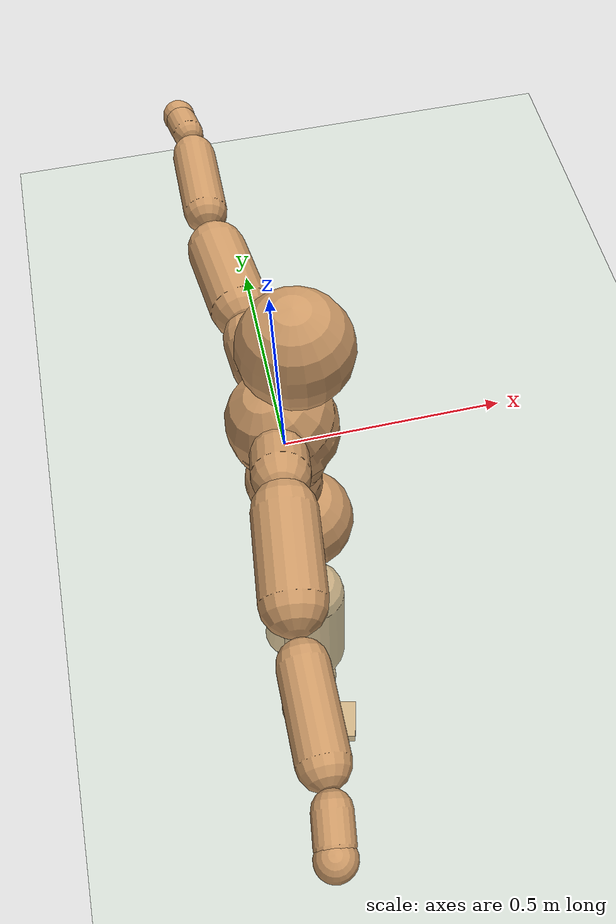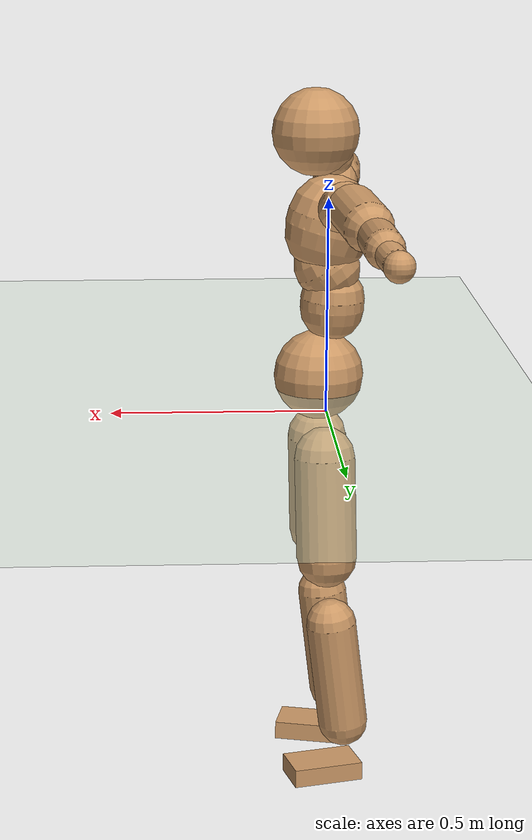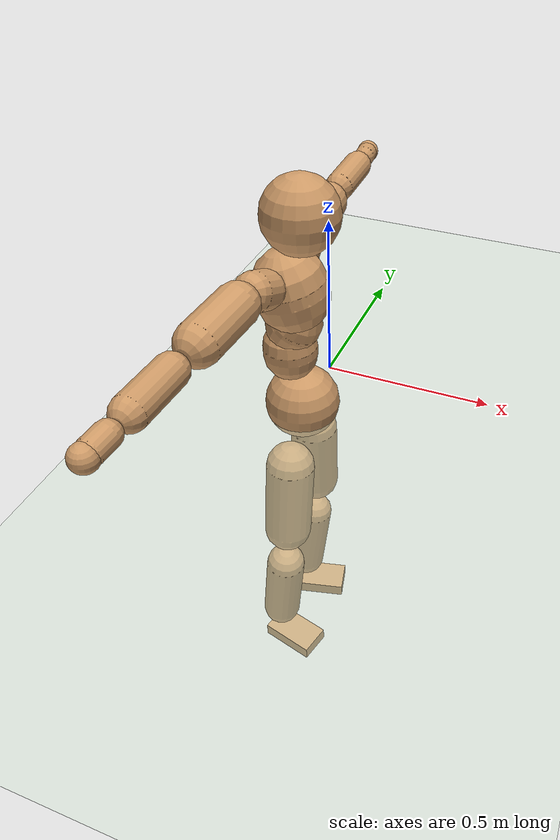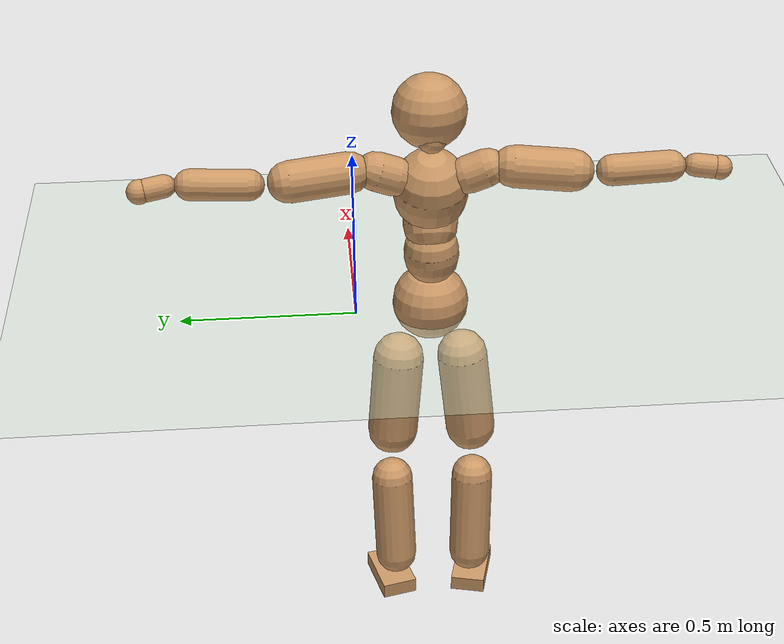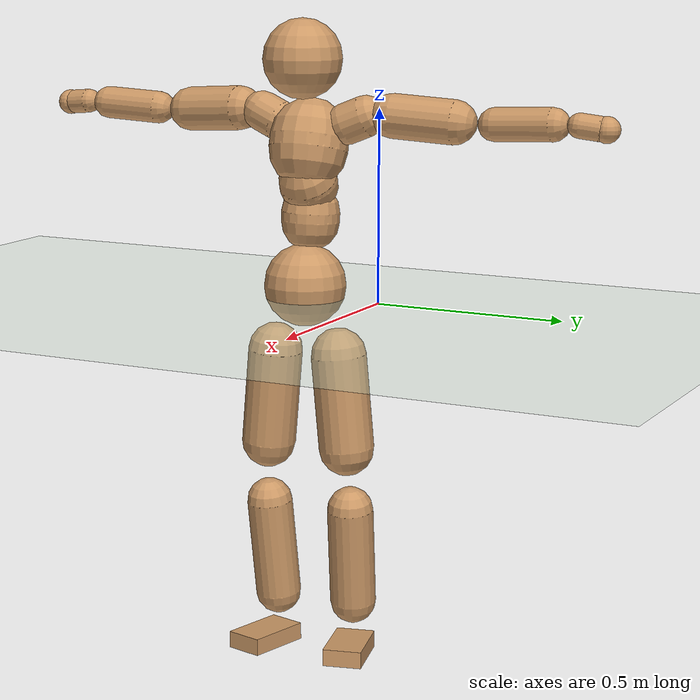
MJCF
<mujoco model="humanoid">
  <compiler coordinate="local" angle="radian"/>
  <default>
    <joint damping="0.0" armature="0.01" stiffness="0.0" limited="true"/>
    <geom conaffinity="1" condim="3" contype="7" margin="0.001" rgba="0.8 0.6 .4 1"/>
  </default>
  <asset>
    <texture type="skybox" builtin="gradient" rgb1=".4 .5 .6" rgb2="0 0 0" width="100" height="100"/>
    <texture builtin="flat" height="1278" mark="cross" markrgb="1 1 1" name="texgeom" random="0.01" rgb1="0.8 0.6 0.4" rgb2="0.8 0.6 0.4" type="cube" width="127"/>
    <texture builtin="checker" height="100" name="texplane" rgb1="0 0 0" rgb2="0.8 0.8 0.8" type="2d" width="100"/>
    <material name="MatPlane" reflectance="0.5" shininess="1" specular="1" texrepeat="60 60" texture="texplane"/>
    <material name="geom" texture="texgeom" texuniform="true"/>
  </asset>
  <worldbody>
    <light cutoff="100" diffuse="1 1 1" dir="-0 0 -1.3" directional="true" exponent="1" pos="0 0 1.3" specular=".1 .1 .1"/>
    <geom conaffinity="1" condim="3" name="floor" pos="0 0 0" rgba="0.8 0.9 0.8 1" size="100 100 .2" type="plane" material="MatPlane"/>
    <body name="Pelvis" pos="-0 -0.2123 0.032">
      <freejoint name="Pelvis"/>
      <geom type="sphere" contype="1" conaffinity="1" density="500" size="0.1082" pos="0.0000 0.0000 0.0000" name="Pelvis"/>
      <body name="L_Hip" pos="-0.0074 0.0864 -0.0984">
        <joint name="L_Hip_x" type="hinge" pos="0 0 0" axis="1 0 0" stiffness="800" damping="80" armature="0.02" range="-180.0000 180.0000"/>
        <joint name="L_Hip_y" type="hinge" pos="0 0 0" axis="0 1 0" stiffness="800" damping="80" armature="0.02" range="-180.0000 180.0000"/>
        <joint name="L_Hip_z" type="hinge" pos="0 0 0" axis="0 0 1" stiffness="800" damping="80" armature="0.02" range="-180.0000 180.0000"/>
        <geom type="capsule" contype="1" conaffinity="1" density="500" fromto="-0.0021 0.0069 -0.0831 -0.0084 0.0274 -0.3323" size="0.0731" name="L_Hip"/>
        <body name="L_Knee" pos="-0.0105 0.0343 -0.4154">
          <joint name="L_Knee_x" type="hinge" pos="0 0 0" axis="1 0 0" stiffness="800" damping="80" armature="0.02" range="-180.0000 180.0000"/>
          <joint name="L_Knee_y" type="hinge" pos="0 0 0" axis="0 1 0" stiffness="800" damping="80" armature="0.02" range="-180.0000 180.0000"/>
          <joint name="L_Knee_z" type="hinge" pos="0 0 0" axis="0 0 1" stiffness="800" damping="80" armature="0.02" range="-180.0000 180.0000"/>
          <geom type="capsule" contype="1" conaffinity="1" density="500" fromto="-0.0110 -0.0023 -0.0880 -0.0442 -0.0093 -0.3521" size="0.0612" name="L_Knee"/>
          <body name="L_Ankle" pos="-0.0552 -0.0116 -0.4401">
            <joint name="L_Ankle_x" type="hinge" pos="0 0 0" axis="1 0 0" stiffness="800" damping="80" armature="0.02" range="-180.0000 180.0000"/>
            <joint name="L_Ankle_y" type="hinge" pos="0 0 0" axis="0 1 0" stiffness="800" damping="80" armature="0.02" range="-180.0000 180.0000"/>
            <joint name="L_Ankle_z" type="hinge" pos="0 0 0" axis="0 0 1" stiffness="800" damping="80" armature="0.02" range="-180.0000 180.0000"/>
            <geom type="box" contype="1" conaffinity="1" density="500" pos="0.0611 0.0150 -0.0310" size="0.0867 0.0517 0.0226" quat="0.9928 0.0000 0.0000 0.1201" name="L_Ankle"/>
            <body name="L_Toe" pos="0.1222 0.03 -0.0619">
              <joint name="L_Toe_x" type="hinge" pos="0 0 0" axis="1 0 0" stiffness="500" damping="50" armature="0.02" range="-180.0000 180.0000"/>
              <joint name="L_Toe_y" type="hinge" pos="0 0 0" axis="0 1 0" stiffness="500" damping="50" armature="0.02" range="-180.0000 180.0000"/>
              <joint name="L_Toe_z" type="hinge" pos="0 0 0" axis="0 0 1" stiffness="500" damping="50" armature="0.02" range="-180.0000 180.0000"/>
              <geom type="box" contype="1" conaffinity="1" density="500" pos="0.0000 0.0000 0.0319" size="0.001 0.0025 0.0012" quat="0.9921 0.0000 0.0000 0.1258" name="L_Toe"/>
            </body>
          </body>
        </body>
      </body>
      <body name="R_Hip" pos="-0.0033 -0.0838 -0.0977">
        <joint name="R_Hip_x" type="hinge" pos="0 0 0" axis="1 0 0" stiffness="800" damping="80" armature="0.02" range="-180.0000 180.0000"/>
        <joint name="R_Hip_y" type="hinge" pos="0 0 0" axis="0 1 0" stiffness="800" damping="80" armature="0.02" range="-180.0000 180.0000"/>
        <joint name="R_Hip_z" type="hinge" pos="0 0 0" axis="0 0 1" stiffness="800" damping="80" armature="0.02" range="-180.0000 180.0000"/>
        <geom type="capsule" contype="1" conaffinity="1" density="500" fromto="-0.0027 -0.0086 -0.0843 -0.0107 -0.0344 -0.3374" size="0.0722" name="R_Hip"/>
        <body name="R_Knee" pos="-0.0134 -0.043 -0.4217">
          <joint name="R_Knee_x" type="hinge" pos="0 0 0" axis="1 0 0" stiffness="800" damping="80" armature="0.02" range="-180.0000 180.0000"/>
          <joint name="R_Knee_y" type="hinge" pos="0 0 0" axis="0 1 0" stiffness="800" damping="80" armature="0.02" range="-180.0000 180.0000"/>
          <joint name="R_Knee_z" type="hinge" pos="0 0 0" axis="0 0 1" stiffness="800" damping="80" armature="0.02" range="-180.0000 180.0000"/>
          <geom type="capsule" contype="1" conaffinity="1" density="500" fromto="-0.0106 0.0029 -0.0883 -0.0424 0.0116 -0.3531" size="0.0612" name="R_Knee"/>
          <body name="R_Ankle" pos="-0.053 0.0145 -0.4414">
            <joint name="R_Ankle_x" type="hinge" pos="0 0 0" axis="1 0 0" stiffness="800" damping="80" armature="0.02" range="-180.0000 180.0000"/>
            <joint name="R_Ankle_y" type="hinge" pos="0 0 0" axis="0 1 0" stiffness="800" damping="80" armature="0.02" range="-180.0000 180.0000"/>
            <joint name="R_Ankle_z" type="hinge" pos="0 0 0" axis="0 0 1" stiffness="800" damping="80" armature="0.02" range="-180.0000 180.0000"/>
            <geom type="box" contype="1" conaffinity="1" density="500" pos="0.0634 -0.0157 -0.0275" size="0.0884 0.0507 0.0226" quat="0.9927 0.0000 0.0000 -0.1210" name="R_Ankle"/>
            <body name="R_Toe" pos="0.1269 -0.0314 -0.055">
              <joint name="R_Toe_x" type="hinge" pos="0 0 0" axis="1 0 0" stiffness="500" damping="50" armature="0.02" range="-180.0000 180.0000"/>
              <joint name="R_Toe_y" type="hinge" pos="0 0 0" axis="0 1 0" stiffness="500" damping="50" armature="0.02" range="-180.0000 180.0000"/>
              <joint name="R_Toe_z" type="hinge" pos="0 0 0" axis="0 0 1" stiffness="500" damping="50" armature="0.02" range="-180.0000 180.0000"/>
              <geom type="box" contype="1" conaffinity="1" density="500" pos="0.0000 0.0000 0.0297" size="0.0009 0.0024 0.0012" quat="0.9937 0.0000 0.0000 -0.1119" name="R_Toe"/>
            </body>
          </body>
        </body>
      </body>
      <body name="Torso" pos="-0.0284 -0.0021 0.1129">
        <joint name="Torso_x" type="hinge" pos="0 0 0" axis="1 0 0" stiffness="1000" damping="100" armature="0.02" range="-180.0000 180.0000"/>
        <joint name="Torso_y" type="hinge" pos="0 0 0" axis="0 1 0" stiffness="1000" damping="100" armature="0.02" range="-180.0000 180.0000"/>
        <joint name="Torso_z" type="hinge" pos="0 0 0" axis="0 0 1" stiffness="1000" damping="100" armature="0.02" range="-180.0000 180.0000"/>
        <geom type="capsule" contype="1" conaffinity="1" density="500" fromto="-0.0030 0.0020 0.0756 -0.0020 0.0013 0.0504" size="0.077" name="Torso"/>
        <body name="Spine" pos="-0.005 0.0033 0.126">
          <joint name="Spine_x" type="hinge" pos="0 0 0" axis="1 0 0" stiffness="1000" damping="100" armature="0.02" range="-180.0000 180.0000"/>
          <joint name="Spine_y" type="hinge" pos="0 0 0" axis="0 1 0" stiffness="1000" damping="100" armature="0.02" range="-180.0000 180.0000"/>
          <joint name="Spine_z" type="hinge" pos="0 0 0" axis="0 0 1" stiffness="1000" damping="100" armature="0.02" range="-180.0000 180.0000"/>
          <geom type="capsule" contype="1" conaffinity="1" density="500" fromto="0.0199 0.0002 0.0306 0.0133 0.0002 0.0204" size="0.0766" name="Spine"/>
          <body name="Chest" pos="0.0332 0.0004 0.051">
            <joint name="Chest_x" type="hinge" pos="0 0 0" axis="1 0 0" stiffness="1000" damping="100" armature="0.02" range="-180.0000 180.0000"/>
            <joint name="Chest_y" type="hinge" pos="0 0 0" axis="0 1 0" stiffness="1000" damping="100" armature="0.02" range="-180.0000 180.0000"/>
            <joint name="Chest_z" type="hinge" pos="0 0 0" axis="0 0 1" stiffness="1000" damping="100" armature="0.02" range="-180.0000 180.0000"/>
            <geom type="capsule" contype="1" conaffinity="1" density="500" fromto="-0.0243 -0.0011 0.0940 -0.0162 -0.0007 0.0627" size="0.1028" name="Chest"/>
            <body name="Neck" pos="-0.0437 -0.0037 0.2248">
              <joint name="Neck_x" type="hinge" pos="0 0 0" axis="1 0 0" stiffness="500" damping="50" armature="0.02" range="-180.0000 180.0000"/>
              <joint name="Neck_y" type="hinge" pos="0 0 0" axis="0 1 0" stiffness="500" damping="50" armature="0.02" range="-180.0000 180.0000"/>
              <joint name="Neck_z" type="hinge" pos="0 0 0" axis="0 0 1" stiffness="500" damping="50" armature="0.02" range="-180.0000 180.0000"/>
              <geom type="capsule" contype="1" conaffinity="1" density="500" fromto="0.0115 0.0006 0.0144 0.0459 0.0023 0.0578" size="0.0434" name="Neck"/>
              <body name="Head" pos="0.0573 0.0028 0.0722">
                <joint name="Head_x" type="hinge" pos="0 0 0" axis="1 0 0" stiffness="500" damping="50" armature="0.02" range="-180.0000 180.0000"/>
                <joint name="Head_y" type="hinge" pos="0 0 0" axis="0 1 0" stiffness="500" damping="50" armature="0.02" range="-180.0000 180.0000"/>
                <joint name="Head_z" type="hinge" pos="0 0 0" axis="0 0 1" stiffness="500" damping="50" armature="0.02" range="-180.0000 180.0000"/>
                <geom type="sphere" contype="1" conaffinity="1" density="500" size="0.1035" pos="0.0000 0.0000 0.0000" name="Head"/>
              </body>
            </body>
            <body name="L_Thorax" pos="-0.036 0.0798 0.123">
              <joint name="L_Thorax_x" type="hinge" pos="0 0 0" axis="1 0 0" stiffness="500" damping="50" armature="0.02" range="-180.0000 180.0000"/>
              <joint name="L_Thorax_y" type="hinge" pos="0 0 0" axis="0 1 0" stiffness="500" damping="50" armature="0.02" range="-180.0000 180.0000"/>
              <joint name="L_Thorax_z" type="hinge" pos="0 0 0" axis="0 0 1" stiffness="500" damping="50" armature="0.02" range="-180.0000 180.0000"/>
              <geom type="capsule" contype="1" conaffinity="1" density="500" fromto="-0.0022 0.0174 0.0072 -0.0089 0.0695 0.0288" size="0.0543" name="L_Thorax"/>
              <body name="L_Shoulder" pos="-0.0111 0.0869 0.036">
                <joint name="L_Shoulder_x" type="hinge" pos="0 0 0" axis="1 0 0" stiffness="500" damping="50" armature="0.02" range="-720.0000 720.0000"/>
                <joint name="L_Shoulder_y" type="hinge" pos="0 0 0" axis="0 1 0" stiffness="500" damping="50" armature="0.02" range="-720.0000 720.0000"/>
                <joint name="L_Shoulder_z" type="hinge" pos="0 0 0" axis="0 0 1" stiffness="500" damping="50" armature="0.02" range="-720.0000 720.0000"/>
                <geom type="capsule" contype="1" conaffinity="1" density="500" fromto="-0.0065 0.0545 -0.0035 -0.0259 0.2181 -0.0141" size="0.0574" name="L_Shoulder"/>
                <body name="L_Elbow" pos="-0.0324 0.2727 -0.0176">
                  <joint name="L_Elbow_x" type="hinge" pos="0 0 0" axis="1 0 0" stiffness="500" damping="50" armature="0.02" range="-720.0000 720.0000"/>
                  <joint name="L_Elbow_y" type="hinge" pos="0 0 0" axis="0 1 0" stiffness="500" damping="50" armature="0.02" range="-720.0000 720.0000"/>
                  <joint name="L_Elbow_z" type="hinge" pos="0 0 0" axis="0 0 1" stiffness="500" damping="50" armature="0.02" range="-720.0000 720.0000"/>
                  <geom type="capsule" contype="1" conaffinity="1" density="500" fromto="0.0003 0.0516 0.0025 0.0011 0.2063 0.0098" size="0.0432" name="L_Elbow"/>
                  <body name="L_Wrist" pos="0.0014 0.2578 0.0123">
                    <joint name="L_Wrist_x" type="hinge" pos="0 0 0" axis="1 0 0" stiffness="300" damping="30" armature="0.02" range="-180.0000 180.0000"/>
                    <joint name="L_Wrist_y" type="hinge" pos="0 0 0" axis="0 1 0" stiffness="300" damping="30" armature="0.02" range="-180.0000 180.0000"/>
                    <joint name="L_Wrist_z" type="hinge" pos="0 0 0" axis="0 0 1" stiffness="300" damping="30" armature="0.02" range="-180.0000 180.0000"/>
                    <geom type="capsule" contype="1" conaffinity="1" density="500" fromto="-0.0027 0.0167 -0.0021 -0.0110 0.0666 -0.0083" size="0.0316" name="L_Wrist"/>
                    <body name="L_Hand" pos="-0.0137 0.0833 -0.0104">
                      <joint name="L_Hand_x" type="hinge" pos="0 0 0" axis="1 0 0" stiffness="300" damping="30" armature="0.02" range="-180.0000 180.0000"/>
                      <joint name="L_Hand_y" type="hinge" pos="0 0 0" axis="0 1 0" stiffness="300" damping="30" armature="0.02" range="-180.0000 180.0000"/>
                      <joint name="L_Hand_z" type="hinge" pos="0 0 0" axis="0 0 1" stiffness="300" damping="30" armature="0.02" range="-180.0000 180.0000"/>
                      <geom type="sphere" contype="1" conaffinity="1" density="500" size="0.0336" pos="0.0000 0.0000 0.0000" name="L_Hand"/>
                    </body>
                  </body>
                </body>
              </body>
            </body>
            <body name="R_Thorax" pos="-0.0416 -0.0816 0.1221">
              <joint name="R_Thorax_x" type="hinge" pos="0 0 0" axis="1 0 0" stiffness="500" damping="50" armature="0.02" range="-180.0000 180.0000"/>
              <joint name="R_Thorax_y" type="hinge" pos="0 0 0" axis="0 1 0" stiffness="500" damping="50" armature="0.02" range="-180.0000 180.0000"/>
              <joint name="R_Thorax_z" type="hinge" pos="0 0 0" axis="0 0 1" stiffness="500" damping="50" armature="0.02" range="-180.0000 180.0000"/>
              <geom type="capsule" contype="1" conaffinity="1" density="500" fromto="-0.0019 -0.0177 0.0076 -0.0075 -0.0709 0.0302" size="0.0527" name="R_Thorax"/>
              <body name="R_Shoulder" pos="-0.0093 -0.0887 0.0378">
                <joint name="R_Shoulder_x" type="hinge" pos="0 0 0" axis="1 0 0" stiffness="500" damping="50" armature="0.02" range="-720.0000 720.0000"/>
                <joint name="R_Shoulder_y" type="hinge" pos="0 0 0" axis="0 1 0" stiffness="500" damping="50" armature="0.02" range="-720.0000 720.0000"/>
                <joint name="R_Shoulder_z" type="hinge" pos="0 0 0" axis="0 0 1" stiffness="500" damping="50" armature="0.02" range="-720.0000 720.0000"/>
                <geom type="capsule" contype="1" conaffinity="1" density="500" fromto="-0.0056 -0.0530 -0.0036 -0.0225 -0.2120 -0.0144" size="0.0584" name="R_Shoulder"/>
                <body name="R_Elbow" pos="-0.0281 -0.265 -0.018">
                  <joint name="R_Elbow_x" type="hinge" pos="0 0 0" axis="1 0 0" stiffness="500" damping="50" armature="0.02" range="-720.0000 720.0000"/>
                  <joint name="R_Elbow_y" type="hinge" pos="0 0 0" axis="0 1 0" stiffness="500" damping="50" armature="0.02" range="-720.0000 720.0000"/>
                  <joint name="R_Elbow_z" type="hinge" pos="0 0 0" axis="0 0 1" stiffness="500" damping="50" armature="0.02" range="-720.0000 720.0000"/>
                  <geom type="capsule" contype="1" conaffinity="1" density="500" fromto="-0.0003 -0.0528 0.0023 -0.0013 -0.2111 0.0091" size="0.0433" name="R_Elbow"/>
                  <body name="R_Wrist" pos="-0.0017 -0.2639 0.0114">
                    <joint name="R_Wrist_x" type="hinge" pos="0 0 0" axis="1 0 0" stiffness="300" damping="30" armature="0.02" range="-180.0000 180.0000"/>
                    <joint name="R_Wrist_y" type="hinge" pos="0 0 0" axis="0 1 0" stiffness="300" damping="30" armature="0.02" range="-180.0000 180.0000"/>
                    <joint name="R_Wrist_z" type="hinge" pos="0 0 0" axis="0 0 1" stiffness="300" damping="30" armature="0.02" range="-180.0000 180.0000"/>
                    <geom type="capsule" contype="1" conaffinity="1" density="500" fromto="-0.0022 -0.0166 -0.0015 -0.0087 -0.0664 -0.0061" size="0.0321" name="R_Wrist"/>
                    <body name="R_Hand" pos="-0.0109 -0.083 -0.0077">
                      <joint name="R_Hand_x" type="hinge" pos="0 0 0" axis="1 0 0" stiffness="300" damping="30" armature="0.02" range="-180.0000 180.0000"/>
                      <joint name="R_Hand_y" type="hinge" pos="0 0 0" axis="0 1 0" stiffness="300" damping="30" armature="0.02" range="-180.0000 180.0000"/>
                      <joint name="R_Hand_z" type="hinge" pos="0 0 0" axis="0 0 1" stiffness="300" damping="30" armature="0.02" range="-180.0000 180.0000"/>
                      <geom type="sphere" contype="1" conaffinity="1" density="500" size="0.0335" pos="0.0000 0.0000 0.0000" name="R_Hand"/>
                    </body>
                  </body>
                </body>
              </body>
            </body>
          </body>
        </body>
      </body>
    </body>
  </worldbody>
  <actuator>
    <motor name="L_Hip_x" joint="L_Hip_x" gear="500"/>
    <motor name="L_Hip_y" joint="L_Hip_y" gear="500"/>
    <motor name="L_Hip_z" joint="L_Hip_z" gear="500"/>
    <motor name="L_Knee_x" joint="L_Knee_x" gear="500"/>
    <motor name="L_Knee_y" joint="L_Knee_y" gear="500"/>
    <motor name="L_Knee_z" joint="L_Knee_z" gear="500"/>
    <motor name="L_Ankle_x" joint="L_Ankle_x" gear="500"/>
    <motor name="L_Ankle_y" joint="L_Ankle_y" gear="500"/>
    <motor name="L_Ankle_z" joint="L_Ankle_z" gear="500"/>
    <motor name="L_Toe_x" joint="L_Toe_x" gear="500"/>
    <motor name="L_Toe_y" joint="L_Toe_y" gear="500"/>
    <motor name="L_Toe_z" joint="L_Toe_z" gear="500"/>
    <motor name="R_Hip_x" joint="R_Hip_x" gear="500"/>
    <motor name="R_Hip_y" joint="R_Hip_y" gear="500"/>
    <motor name="R_Hip_z" joint="R_Hip_z" gear="500"/>
    <motor name="R_Knee_x" joint="R_Knee_x" gear="500"/>
    <motor name="R_Knee_y" joint="R_Knee_y" gear="500"/>
    <motor name="R_Knee_z" joint="R_Knee_z" gear="500"/>
    <motor name="R_Ankle_x" joint="R_Ankle_x" gear="500"/>
    <motor name="R_Ankle_y" joint="R_Ankle_y" gear="500"/>
    <motor name="R_Ankle_z" joint="R_Ankle_z" gear="500"/>
    <motor name="R_Toe_x" joint="R_Toe_x" gear="500"/>
    <motor name="R_Toe_y" joint="R_Toe_y" gear="500"/>
    <motor name="R_Toe_z" joint="R_Toe_z" gear="500"/>
    <motor name="Torso_x" joint="Torso_x" gear="500"/>
    <motor name="Torso_y" joint="Torso_y" gear="500"/>
    <motor name="Torso_z" joint="Torso_z" gear="500"/>
    <motor name="Spine_x" joint="Spine_x" gear="500"/>
    <motor name="Spine_y" joint="Spine_y" gear="500"/>
    <motor name="Spine_z" joint="Spine_z" gear="500"/>
    <motor name="Chest_x" joint="Chest_x" gear="500"/>
    <motor name="Chest_y" joint="Chest_y" gear="500"/>
    <motor name="Chest_z" joint="Chest_z" gear="500"/>
    <motor name="Neck_x" joint="Neck_x" gear="500"/>
    <motor name="Neck_y" joint="Neck_y" gear="500"/>
    <motor name="Neck_z" joint="Neck_z" gear="500"/>
    <motor name="Head_x" joint="Head_x" gear="500"/>
    <motor name="Head_y" joint="Head_y" gear="500"/>
    <motor name="Head_z" joint="Head_z" gear="500"/>
    <motor name="L_Thorax_x" joint="L_Thorax_x" gear="500"/>
    <motor name="L_Thorax_y" joint="L_Thorax_y" gear="500"/>
    <motor name="L_Thorax_z" joint="L_Thorax_z" gear="500"/>
    <motor name="L_Shoulder_x" joint="L_Shoulder_x" gear="500"/>
    <motor name="L_Shoulder_y" joint="L_Shoulder_y" gear="500"/>
    <motor name="L_Shoulder_z" joint="L_Shoulder_z" gear="500"/>
    <motor name="L_Elbow_x" joint="L_Elbow_x" gear="500"/>
    <motor name="L_Elbow_y" joint="L_Elbow_y" gear="500"/>
    <motor name="L_Elbow_z" joint="L_Elbow_z" gear="500"/>
    <motor name="L_Wrist_x" joint="L_Wrist_x" gear="500"/>
    <motor name="L_Wrist_y" joint="L_Wrist_y" gear="500"/>
    <motor name="L_Wrist_z" joint="L_Wrist_z" gear="500"/>
    <motor name="L_Hand_x" joint="L_Hand_x" gear="500"/>
    <motor name="L_Hand_y" joint="L_Hand_y" gear="500"/>
    <motor name="L_Hand_z" joint="L_Hand_z" gear="500"/>
    <motor name="R_Thorax_x" joint="R_Thorax_x" gear="500"/>
    <motor name="R_Thorax_y" joint="R_Thorax_y" gear="500"/>
    <motor name="R_Thorax_z" joint="R_Thorax_z" gear="500"/>
    <motor name="R_Shoulder_x" joint="R_Shoulder_x" gear="500"/>
    <motor name="R_Shoulder_y" joint="R_Shoulder_y" gear="500"/>
    <motor name="R_Shoulder_z" joint="R_Shoulder_z" gear="500"/>
    <motor name="R_Elbow_x" joint="R_Elbow_x" gear="500"/>
    <motor name="R_Elbow_y" joint="R_Elbow_y" gear="500"/>
    <motor name="R_Elbow_z" joint="R_Elbow_z" gear="500"/>
    <motor name="R_Wrist_x" joint="R_Wrist_x" gear="500"/>
    <motor name="R_Wrist_y" joint="R_Wrist_y" gear="500"/>
    <motor name="R_Wrist_z" joint="R_Wrist_z" gear="500"/>
    <motor name="R_Hand_x" joint="R_Hand_x" gear="500"/>
    <motor name="R_Hand_y" joint="R_Hand_y" gear="500"/>
    <motor name="R_Hand_z" joint="R_Hand_z" gear="500"/>
  </actuator>
  <contact>
    <exclude body1="Torso" body2="Chest"/>
    <exclude body1="Head" body2="Chest"/>
    <exclude body1="R_Knee" body2="R_Toe"/>
    <exclude body1="R_Knee" body2="L_Ankle"/>
    <exclude body1="R_Knee" body2="L_Toe"/>
    <exclude body1="L_Knee" body2="L_Toe"/>
    <exclude body1="L_Knee" body2="R_Ankle"/>
    <exclude body1="L_Knee" body2="R_Toe"/>
    <exclude body1="L_Shoulder" body2="Chest"/>
    <exclude body1="R_Shoulder" body2="Chest"/>
  </contact>
  <sensor/>
  <size njmax="700" nconmax="700"/>
</mujoco>
